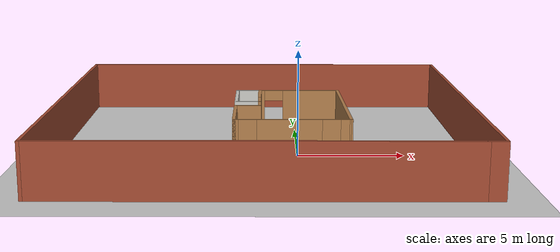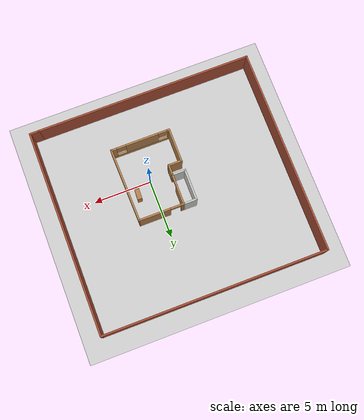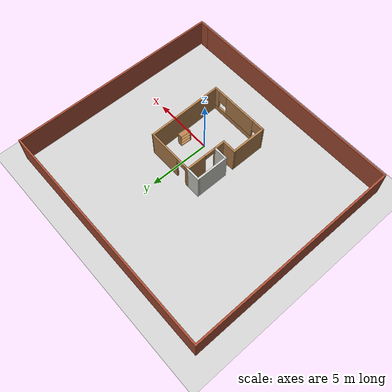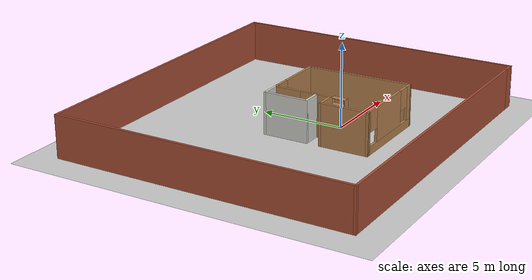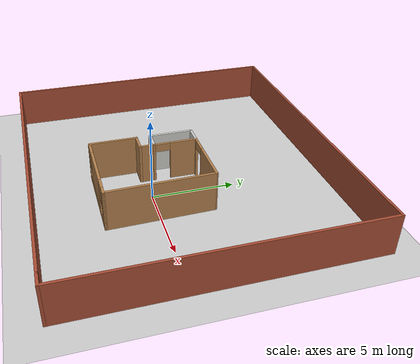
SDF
<sdf version="1.7">
 <world name="default">
  <light name="sun" type="directional">
   <pose>0 0 10 0 -0 0</pose>
   <diffuse>0.8 0.8 0.8 1</diffuse>
   <specular>0.2 0.2 0.2 1</specular>
   <attenuation>
    <range>1000</range>
    <constant>0.9</constant>
    <linear>0.01</linear>
    <quadratic>0.001</quadratic>
   </attenuation>
   <direction>-0.5 0.1 -0.9</direction>
   <spot><inner_angle>0</inner_angle><outer_angle>0</outer_angle><falloff>0</falloff></spot>
  </light>
  <model name="ground_plane">
   <static>1</static>
   <link name="link">
    <collision name="collision">
     <geometry><plane><normal>0 0 1</normal><size>100 100</size></plane></geometry>
     <surface>
      <contact><collide_bitmask>65535</collide_bitmask></contact>
      <friction><ode><mu>100</mu><mu2>50</mu2></ode></friction>
     </surface>
    </collision>
    <visual name="visual">
     <cast_shadows>0</cast_shadows>
     <geometry><plane><normal>0 0 1</normal><size>100 100</size></plane></geometry>
     <material>
      <script><uri>file://media/materials/scripts/gazebo.material</uri><name>Gazebo/Grey</name></script>
     </material>
    </visual>
   </link>
  </model>
  <gravity>0 0 -9.8</gravity>
  <magnetic_field>6e-06 2.3e-05 -4.2e-05</magnetic_field>
  <atmosphere type="adiabatic"/>
  <physics type="ode">
   <max_step_size>0.001</max_step_size>
   <real_time_factor>1</real_time_factor>
   <real_time_update_rate>1000</real_time_update_rate>
  </physics>
  <scene><ambient>0.4 0.4 0.4 1</ambient><background>0.7 0.7 0.7 1</background><shadows>1</shadows></scene>
  <spherical_coordinates>
   <surface_model>EARTH_WGS84</surface_model>
   <latitude_deg>0</latitude_deg>
   <longitude_deg>0</longitude_deg>
   <elevation>0</elevation>
   <heading_deg>0</heading_deg>
  </spherical_coordinates>
  <model name="house">
   <pose>-0.3386 0.03349 0 0 -0 0</pose>
   <link name="Wall_31">
    <collision name="Wall_31_Collision">
     <geometry><box><size>1.25 0.15 2.5</size></box></geometry>
     <pose>0 0 1.25 0 -0 0</pose>
    </collision>
    <visual name="Wall_31_Visual">
     <pose>0 0 1.25 0 -0 0</pose>
     <geometry><box><size>1.25 0.15 2.5</size></box></geometry>
     <material>
      <script><uri>file://media/materials/scripts/gazebo.material</uri><name>Gazebo/CeilingTiled</name></script>
      <ambient>1 1 1 1</ambient>
     </material>
     <meta><layer>0</layer></meta>
    </visual>
    <pose>-2.00088 3.15 0 0 -0 3.14159</pose>
   </link>
   <link name="Wall_32">
    <collision name="Wall_32_Collision">
     <geometry><box><size>2.75 0.15 2.5</size></box></geometry>
     <pose>0 0 1.25 0 -0 0</pose>
    </collision>
    <visual name="Wall_32_Visual">
     <pose>0 0 1.25 0 -0 0</pose>
     <geometry><box><size>2.75 0.15 2.5</size></box></geometry>
     <material>
      <script><uri>file://media/materials/scripts/gazebo.material</uri><name>Gazebo/CeilingTiled</name></script>
      <ambient>1 1 1 1</ambient>
     </material>
     <meta><layer>0</layer></meta>
    </visual>
    <pose>-2.55088 1.85 0 0 -0 -1.5708</pose>
   </link>
   <link name="Wall_33">
    <collision name="Wall_33_Collision">
     <geometry><box><size>1.25 0.15 2.5</size></box></geometry>
     <pose>0 0 1.25 0 -0 0</pose>
    </collision>
    <visual name="Wall_33_Visual">
     <pose>0 0 1.25 0 -0 0</pose>
     <geometry><box><size>1.25 0.15 2.5</size></box></geometry>
     <material>
      <script><uri>file://media/materials/scripts/gazebo.material</uri><name>Gazebo/CeilingTiled</name></script>
      <ambient>1 1 1 1</ambient>
     </material>
     <meta><layer>0</layer></meta>
    </visual>
    <pose>-2.00088 0.55 0 0 -0 0</pose>
   </link>
   <link name="Wall_34">
    <collision name="Wall_34_Collision">
     <geometry><box><size>1 0.15 2.5</size></box></geometry>
     <pose>0 0 1.25 0 -0 0</pose>
    </collision>
    <visual name="Wall_34_Visual">
     <pose>0 0 1.25 0 -0 0</pose>
     <geometry><box><size>1 0.15 2.5</size></box></geometry>
     <material>
      <script><uri>file://media/materials/scripts/gazebo.material</uri><name>Gazebo/Wood</name></script>
      <ambient>1 1 1 1</ambient>
     </material>
     <meta><layer>0</layer></meta>
    </visual>
    <pose>-1.45088 0.125 0 0 -0 -1.5708</pose>
   </link>
   <link name="Wall_35">
    <collision name="Wall_35_Collision">
     <geometry><box><size>1.25 0.15 2.5</size></box></geometry>
     <pose>0 0 1.25 0 -0 0</pose>
    </collision>
    <visual name="Wall_35_Visual">
     <pose>0 0 1.25 0 -0 0</pose>
     <geometry><box><size>1.25 0.15 2.5</size></box></geometry>
     <material>
      <script><uri>file://media/materials/scripts/gazebo.material</uri><name>Gazebo/Wood</name></script>
      <ambient>1 1 1 1</ambient>
     </material>
     <meta><layer>0</layer></meta>
    </visual>
    <pose>-2.00088 -0.3 0 0 -0 3.14159</pose>
   </link>
   <link name="Wall_37">
    <collision name="Wall_37_Collision">
     <geometry><box><size>3 0.15 2.5</size></box></geometry>
     <pose>0 0 1.25 0 -0 0</pose>
    </collision>
    <visual name="Wall_37_Visual">
     <pose>0 0 1.25 0 -0 0</pose>
     <geometry><box><size>3 0.15 2.5</size></box></geometry>
     <material>
      <script><uri>file://media/materials/scripts/gazebo.material</uri><name>Gazebo/Wood</name></script>
      <ambient>1 1 1 1</ambient>
     </material>
     <meta><layer>0</layer></meta>
    </visual>
    <pose>-2.55088 -1.725 0 0 -0 -1.5708</pose>
   </link>
   <link name="Wall_47">
    <pose>-0.000882 -3.15 0 0 -0 0</pose>
    <visual name="Wall_47_Visual_0">
     <pose>-2.49434 0 1.25 0 -0 0</pose>
     <geometry><box><size>0.261327 0.15 2.5</size></box></geometry>
     <material>
      <script><uri>file://media/materials/scripts/gazebo.material</uri><name>Gazebo/Wood</name></script>
      <ambient>1 1 1 1</ambient>
     </material>
     <meta><layer>0</layer></meta>
    </visual>
    <collision name="Wall_47_Collision_0">
     <geometry><box><size>0.261327 0.15 2.5</size></box></geometry>
     <pose>-2.49434 0 1.25 0 -0 0</pose>
    </collision>
    <visual name="Wall_47_Visual_1">
     <pose>0.130664 0 0.25 0 -0 0</pose>
     <geometry><box><size>4.98867 0.15 0.5</size></box></geometry>
     <material>
      <script><uri>file://media/materials/scripts/gazebo.material</uri><name>Gazebo/Wood</name></script>
      <ambient>1 1 1 1</ambient>
     </material>
     <meta><layer>0</layer></meta>
    </visual>
    <collision name="Wall_47_Collision_1">
     <geometry><box><size>4.98867 0.15 0.5</size></box></geometry>
     <pose>0.130664 0 0.25 0 -0 0</pose>
    </collision>
    <visual name="Wall_47_Visual_2">
     <pose>-0.135961 0 1.5 0 -0 0</pose>
     <geometry><box><size>2.85542 0.15 2</size></box></geometry>
     <material>
      <script><uri>file://media/materials/scripts/gazebo.material</uri><name>Gazebo/Wood</name></script>
      <ambient>1 1 1 1</ambient>
     </material>
     <meta><layer>0</layer></meta>
    </visual>
    <collision name="Wall_47_Collision_2">
     <geometry><box><size>2.85542 0.15 2</size></box></geometry>
     <pose>-0.135961 0 1.5 0 -0 0</pose>
    </collision>
    <visual name="Wall_47_Visual_3">
     <pose>2.35838 0 1.5 0 -0 0</pose>
     <geometry><box><size>0.533249 0.15 2</size></box></geometry>
     <material>
      <script><uri>file://media/materials/scripts/gazebo.material</uri><name>Gazebo/Wood</name></script>
      <ambient>1 1 1 1</ambient>
     </material>
     <meta><layer>0</layer></meta>
    </visual>
    <collision name="Wall_47_Collision_3">
     <geometry><box><size>0.533249 0.15 2</size></box></geometry>
     <pose>2.35838 0 1.5 0 -0 0</pose>
    </collision>
    <visual name="Wall_47_Visual_4">
     <pose>-1.96367 0 1.9 0 -0 0</pose>
     <geometry><box><size>0.8 0.15 1.2</size></box></geometry>
     <material>
      <script><uri>file://media/materials/scripts/gazebo.material</uri><name>Gazebo/Wood</name></script>
      <ambient>1 1 1 1</ambient>
     </material>
     <meta><layer>0</layer></meta>
    </visual>
    <collision name="Wall_47_Collision_4">
     <geometry><box><size>0.8 0.15 1.2</size></box></geometry>
     <pose>-1.96367 0 1.9 0 -0 0</pose>
    </collision>
    <visual name="Wall_47_Visual_5">
     <pose>1.69175 0 1.9 0 -0 0</pose>
     <geometry><box><size>0.8 0.15 1.2</size></box></geometry>
     <material>
      <script><uri>file://media/materials/scripts/gazebo.material</uri><name>Gazebo/Wood</name></script>
      <ambient>1 1 1 1</ambient>
     </material>
     <meta><layer>0</layer></meta>
    </visual>
    <collision name="Wall_47_Collision_5">
     <geometry><box><size>0.8 0.15 1.2</size></box></geometry>
     <pose>1.69175 0 1.9 0 -0 0</pose>
    </collision>
   </link>
   <link name="Wall_52">
    <pose>0.474118 3.15 0 0 -0 0</pose>
    <visual name="Wall_52_Visual_0">
     <pose>-1.84093 0 1.25 0 -0 0</pose>
     <geometry><box><size>0.318142 0.15 2.5</size></box></geometry>
     <material>
      <script><uri>file://media/materials/scripts/gazebo.material</uri><name>Gazebo/Wood</name></script>
      <ambient>1 1 1 1</ambient>
     </material>
     <meta><layer>0</layer></meta>
    </visual>
    <collision name="Wall_52_Collision_0">
     <geometry><box><size>0.318142 0.15 2.5</size></box></geometry>
     <pose>-1.84093 0 1.25 0 -0 0</pose>
    </collision>
    <visual name="Wall_52_Visual_1">
     <pose>0.609071 0 1.25 0 -0 0</pose>
     <geometry><box><size>2.78186 0.15 2.5</size></box></geometry>
     <material>
      <script><uri>file://media/materials/scripts/gazebo.material</uri><name>Gazebo/Wood</name></script>
      <ambient>1 1 1 1</ambient>
     </material>
     <meta><layer>0</layer></meta>
    </visual>
    <collision name="Wall_52_Collision_1">
     <geometry><box><size>2.78186 0.15 2.5</size></box></geometry>
     <pose>0.609071 0 1.25 0 -0 0</pose>
    </collision>
    <visual name="Wall_52_Visual_2">
     <pose>-1.23186 0 2.25 0 -0 0</pose>
     <geometry><box><size>0.9 0.15 0.5</size></box></geometry>
     <material>
      <script><uri>file://media/materials/scripts/gazebo.material</uri><name>Gazebo/Wood</name></script>
      <ambient>1 1 1 1</ambient>
     </material>
     <meta><layer>0</layer></meta>
    </visual>
    <collision name="Wall_52_Collision_2">
     <geometry><box><size>0.9 0.15 0.5</size></box></geometry>
     <pose>-1.23186 0 2.25 0 -0 0</pose>
    </collision>
   </link>
   <link name="Wall_53">
    <collision name="Wall_53_Collision">
     <geometry><box><size>6.45179 0.15 2.5</size></box></geometry>
     <pose>0 0 1.25 0 -0 0</pose>
    </collision>
    <visual name="Wall_53_Visual">
     <pose>0 0 1.25 0 -0 0</pose>
     <geometry><box><size>6.45179 0.15 2.5</size></box></geometry>
     <material>
      <script><uri>file://media/materials/scripts/gazebo.material</uri><name>Gazebo/Wood</name></script>
      <ambient>1 1 1 1</ambient>
     </material>
     <meta><layer>0</layer></meta>
    </visual>
    <pose>2.47412 0 0 0 -0 -1.54699</pose>
   </link>
   <link name="Wall_61">
    <pose>-1.45088 1.85 0 0 -0 1.5708</pose>
    <visual name="Wall_61_Visual_0">
     <pose>-1.3007 0 1.25 0 -0 0</pose>
     <geometry><box><size>0.148601 0.15 2.5</size></box></geometry>
     <material>
      <script><uri>file://media/materials/scripts/gazebo.material</uri><name>Gazebo/Wood</name></script>
      <ambient>1 1 1 1</ambient>
     </material>
     <meta><layer>0</layer></meta>
    </visual>
    <collision name="Wall_61_Collision_0">
     <geometry><box><size>0.148601 0.15 2.5</size></box></geometry>
     <pose>-1.3007 0 1.25 0 -0 0</pose>
    </collision>
    <visual name="Wall_61_Visual_1">
     <pose>0.524301 0 1.25 0 -0 0</pose>
     <geometry><box><size>1.7014 0.15 2.5</size></box></geometry>
     <material>
      <script><uri>file://media/materials/scripts/gazebo.material</uri><name>Gazebo/Wood</name></script>
      <ambient>1 1 1 1</ambient>
     </material>
     <meta><layer>0</layer></meta>
    </visual>
    <collision name="Wall_61_Collision_1">
     <geometry><box><size>1.7014 0.15 2.5</size></box></geometry>
     <pose>0.524301 0 1.25 0 -0 0</pose>
    </collision>
    <visual name="Wall_61_Visual_2">
     <pose>-0.776399 0 2.25 0 -0 0</pose>
     <geometry><box><size>0.9 0.15 0.5</size></box></geometry>
     <material>
      <script><uri>file://media/materials/scripts/gazebo.material</uri><name>Gazebo/Wood</name></script>
      <ambient>1 1 1 1</ambient>
     </material>
     <meta><layer>0</layer></meta>
    </visual>
    <collision name="Wall_61_Collision_2">
     <geometry><box><size>0.9 0.15 0.5</size></box></geometry>
     <pose>-0.776399 0 2.25 0 -0 0</pose>
    </collision>
   </link>
   <static>1</static>
  </model>
  <model name="out_wall">
   <pose>-1.62417 1.97616 0 0 -0 0</pose>
   <link name="Wall_100">
    <collision name="Wall_100_Collision">
     <geometry><box><size>17.75 0.15 2.5</size></box></geometry>
     <pose>0 0 1.25 0 -0 0</pose>
    </collision>
    <visual name="Wall_100_Visual">
     <pose>0 0 1.25 0 -0 0</pose>
     <geometry><box><size>17.75 0.15 2.5</size></box></geometry>
     <material>
      <script><uri>file://media/materials/scripts/gazebo.material</uri><name>Gazebo/Bricks</name></script>
      <ambient>1 1 1 1</ambient>
     </material>
     <meta><layer>0</layer></meta>
    </visual>
    <pose>9.675 0 0 0 -0 -1.5708</pose>
   </link>
   <link name="Wall_101">
    <collision name="Wall_101_Collision">
     <geometry><box><size>0.9 0.15 2.5</size></box></geometry>
     <pose>0 0 1.25 0 -0 0</pose>
    </collision>
    <visual name="Wall_101_Visual">
     <pose>0 0 1.25 0 -0 0</pose>
     <geometry><box><size>0.9 0.15 2.5</size></box></geometry>
     <material>
      <script><uri>file://media/materials/scripts/gazebo.material</uri><name>Gazebo/Bricks</name></script>
      <ambient>1 1 1 1</ambient>
     </material>
     <meta><layer>0</layer></meta>
    </visual>
    <pose>9.3 -8.8 0 0 -0 3.14159</pose>
   </link>
   <link name="Wall_94">
    <collision name="Wall_94_Collision">
     <geometry><box><size>18.75 0.15 2.5</size></box></geometry>
     <pose>0 0 1.25 0 -0 0</pose>
    </collision>
    <visual name="Wall_94_Visual">
     <pose>0 0 1.25 0 -0 0</pose>
     <geometry><box><size>18.75 0.15 2.5</size></box></geometry>
     <material>
      <script><uri>file://media/materials/scripts/gazebo.material</uri><name>Gazebo/Bricks</name></script>
      <ambient>1 1 1 1</ambient>
     </material>
     <meta><layer>0</layer></meta>
    </visual>
    <pose>-0.375 -8.8 0 0 -0 3.14159</pose>
   </link>
   <link name="Wall_97">
    <collision name="Wall_97_Collision">
     <geometry><box><size>17.75 0.15 2.5</size></box></geometry>
     <pose>0 0 1.25 0 -0 0</pose>
    </collision>
    <visual name="Wall_97_Visual">
     <pose>0 0 1.25 0 -0 0</pose>
     <geometry><box><size>17.75 0.15 2.5</size></box></geometry>
     <material>
      <script><uri>file://media/materials/scripts/gazebo.material</uri><name>Gazebo/Bricks</name></script>
      <ambient>1 1 1 1</ambient>
     </material>
     <meta><layer>0</layer></meta>
    </visual>
    <pose>-9.675 0 0 0 -0 1.5708</pose>
   </link>
   <link name="Wall_99">
    <collision name="Wall_99_Collision">
     <geometry><box><size>19.5 0.15 2.5</size></box></geometry>
     <pose>0 0 1.25 0 -0 0</pose>
    </collision>
    <visual name="Wall_99_Visual">
     <pose>0 0 1.25 0 -0 0</pose>
     <geometry><box><size>19.5 0.15 2.5</size></box></geometry>
     <material>
      <script><uri>file://media/materials/scripts/gazebo.material</uri><name>Gazebo/Bricks</name></script>
      <ambient>1 1 1 1</ambient>
     </material>
     <meta><layer>0</layer></meta>
    </visual>
    <pose>-0 8.8 0 0 -0 0</pose>
   </link>
   <static>1</static>
  </model>
  <model name="bookshelf">
   <static>1</static>
   <link name="link">
    <inertial><mass>1</mass></inertial>
    <collision name="back">
     <pose>0 0.005 0.6 0 -0 0</pose>
     <geometry><box><size>0.9 0.01 1.2</size></box></geometry>
    </collision>
    <visual name="visual1">
     <pose>0 0.005 0.6 0 -0 0</pose>
     <geometry><box><size>0.9 0.01 1.2</size></box></geometry>
     <material>
      <script><uri>file://media/materials/scripts/gazebo.material</uri><name>Gazebo/Wood</name></script>
     </material>
    </visual>
    <collision name="left_side">
     <pose>0.45 -0.195 0.6 0 -0 0</pose>
     <geometry><box><size>0.02 0.4 1.2</size></box></geometry>
    </collision>
    <visual name="visual2">
     <pose>0.45 -0.195 0.6 0 -0 0</pose>
     <geometry><box><size>0.02 0.4 1.2</size></box></geometry>
     <material>
      <script><uri>file://media/materials/scripts/gazebo.material</uri><name>Gazebo/Wood</name></script>
     </material>
    </visual>
    <collision name="right_side">
     <pose>-0.45 -0.195 0.6 0 -0 0</pose>
     <geometry><box><size>0.02 0.4 1.2</size></box></geometry>
    </collision>
    <visual name="visual3">
     <pose>-0.45 -0.195 0.6 0 -0 0</pose>
     <geometry><box><size>0.02 0.4 1.2</size></box></geometry>
     <material>
      <script><uri>file://media/materials/scripts/gazebo.material</uri><name>Gazebo/Wood</name></script>
     </material>
    </visual>
    <collision name="bottom">
     <pose>0 -0.195 0.03 0 -0 0</pose>
     <geometry><box><size>0.88 0.4 0.06</size></box></geometry>
    </collision>
    <visual name="visual4">
     <pose>0 -0.195 0.03 0 -0 0</pose>
     <geometry><box><size>0.88 0.4 0.06</size></box></geometry>
     <material>
      <script><uri>file://media/materials/scripts/gazebo.material</uri><name>Gazebo/Wood</name></script>
     </material>
    </visual>
    <collision name="top">
     <pose>0 -0.195 1.19 0 -0 0</pose>
     <geometry><box><size>0.88 0.4 0.02</size></box></geometry>
    </collision>
    <visual name="visual5">
     <pose>0 -0.195 1.19 0 -0 0</pose>
     <geometry><box><size>0.88 0.4 0.02</size></box></geometry>
     <material>
      <script><uri>file://media/materials/scripts/gazebo.material</uri><name>Gazebo/Wood</name></script>
     </material>
    </visual>
    <collision name="low_shelf">
     <pose>0 -0.195 0.43 0 -0 0</pose>
     <geometry><box><size>0.88 0.4 0.02</size></box></geometry>
    </collision>
    <visual name="visual6">
     <pose>0 -0.195 0.43 0 -0 0</pose>
     <geometry><box><size>0.88 0.4 0.02</size></box></geometry>
     <material>
      <script><uri>file://media/materials/scripts/gazebo.material</uri><name>Gazebo/Wood</name></script>
     </material>
    </visual>
    <collision name="high_shelf">
     <pose>0 -0.195 0.8 0 -0 0</pose>
     <geometry><box><size>0.88 0.4 0.02</size></box></geometry>
    </collision>
    <visual name="visual7">
     <pose>0 -0.195 0.8 0 -0 0</pose>
     <geometry><box><size>0.88 0.4 0.02</size></box></geometry>
     <material>
      <script><uri>file://media/materials/scripts/gazebo.material</uri><name>Gazebo/Wood</name></script>
     </material>
    </visual>
   </link>
   <pose>1.54438 0.832698 0 0 0 -1.61843</pose>
  </model>
 </world>
</sdf>
